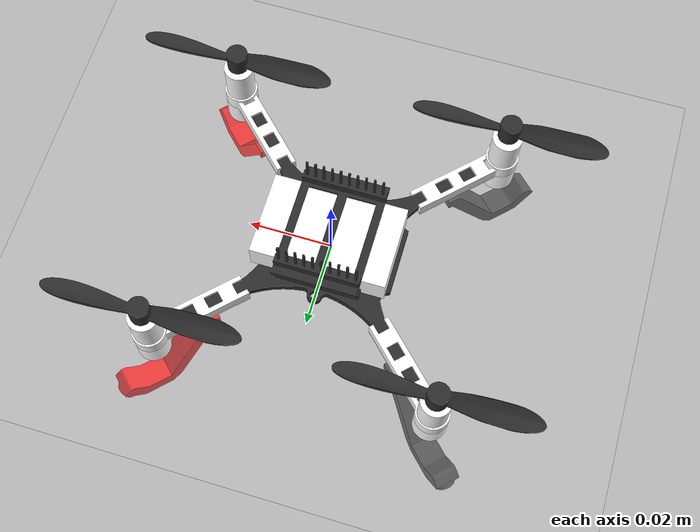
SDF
<?xml version="1.0" ?>
<sdf version="1.10">

<!--
    grep -r "name of searching" .
    ex) grep -r "def VelTraj" .
    For kill the gz server
pkill -f 'gz sim'
-->

<!--
    For gazebo service
ros2 service call /set_trigger sar_msgs/srv/SetTrigger "{data: 1}"

-->

    <world name="sar_world3">
        <physics name="1ms" type="ignored">
            <max_step_size>0.001</max_step_size>
            <real_time_factor>1.0</real_time_factor>
        </physics>

        <plugin
            filename="gz-sim-physics-system"
            name="gz::sim::systems::Physics">
        </plugin>

        <plugin
            filename="gz-sim-scene-broadcaster-system"
            name="gz::sim::systems::SceneBroadcaster">
        </plugin>

        <plugin
            filename="gz-sim-user-commands-system"
            name="gz::sim::systems::UserCommands">
        </plugin>

        <plugin
        filename="gz-sim-sensors-system"
        name="gz::sim::systems::Sensors">
        <render_engine>ogre2</render_engine>
        </plugin>

        <!-- Other world elements -->
        <gui fullscreen="0">
            <!-- 3D scene -->
            <plugin filename="GzScene3D" name="3D View">
                <gz-gui>
                <title>3D View</title>
                <property type="bool" key="showTitleBar">false</property>
                <property type="string" key="state">docked</property>
                </gz-gui>

                <engine>ogre2</engine>
                <scene>scene</scene>
                <ambient_light>0.4 0.4 0.4</ambient_light>
                <background_color>0.8 0.8 0.8</background_color>
            </plugin>

            <!-- World control -->
            <plugin filename="WorldControl" name="World control">
                <gz-gui>
                    <title>World control</title>
                    <property type="bool" key="showTitleBar">false</property>
                    <property type="bool" key="resizable">false</property>
                    <property type="double" key="height">72</property>
                    <property type="double" key="width">121</property>
                    <property type="double" key="z">1</property>

                    <property type="string" key="state">floating</property>
                    <anchors target="3D View">
                    <line own="left" target="left"/>
                    <line own="bottom" target="bottom"/>
                    </anchors>
                </gz-gui>

                <play_pause>true</play_pause>
                <step>true</step>
                <start_paused>true</start_paused>
                <service>/world/world_demo/control</service>
                <stats_topic>/world/world_demo/stats</stats_topic>
            </plugin>

            <!-- World statistics -->
            <plugin filename="WorldStats" name="World stats">
                <gz-gui>
                    <title>World stats</title>
                    <property type="bool" key="showTitleBar">false</property>
                    <property type="bool" key="resizable">false</property>
                    <property type="double" key="height">110</property>
                    <property type="double" key="width">290</property>
                    <property type="double" key="z">1</property>

                    <property type="string" key="state">floating</property>
                    <anchors target="3D View">
                    <line own="right" target="right"/>
                    <line own="bottom" target="bottom"/>
                    </anchors>
                </gz-gui>

                <sim_time>true</sim_time>
                <real_time>true</real_time>
                <real_time_factor>true</real_time_factor>
                <iterations>true</iterations>
                <topic>/world/world_demo/stats</topic>

            </plugin>

            <!-- Entity tree -->
            <plugin filename="EntityTree" name="Entity tree">
            </plugin>

        </gui>

        <light type="directional" name="sun">
            <cast_shadows>true</cast_shadows>
            <pose>0 0 10 0 0 0</pose>
            <diffuse>0.8 0.8 0.8 1</diffuse>
            <specular>0.2 0.2 0.2 1</specular>
            <attenuation>
                <range>1000</range>
                <constant>0.9</constant>
                <linear>0.01</linear>
                <quadratic>0.001</quadratic>
            </attenuation>
            <direction>-0.5 0.1 -0.9</direction>
        </light>
        <model name="ground_plane">
            <static>true</static>
            <link name="link">
                <pose>0 0 -0.3 0 0 0</pose>
                <collision name="collision">
                    <geometry>
                        <plane>
                            <normal>0 0 1</normal>
                            <size>4 4</size>
                        </plane>
                    </geometry>
                </collision>
                <visual name="visual">
                    <geometry>
                        <plane>
                            <normal>0 0 1</normal>
                            <size>4 4</size>
                        </plane>
                    </geometry>
                    <material>
                        <script>
                            <uri>models/Ground.material</uri>
                            <name>Ground_Mat</name>
                        </script>
                    </material>
                </visual>
                </link>
        </model>
        <model name='SAR_Base' canonical_link='SAR_Body'>
            <pose relative_to='world'>0 0 0 0 0 0</pose>   <!--the pose is relative to the world by default-->

            <!--SAR_Body-->
            <link name='SAR_Body'>
                <pose>0 0 0 0 0 0</pose>
                <inertial> <!--inertial properties of the link mass, inertia matix-->
                    <mass>37.0e-3</mass>
                    <inertia>
                        <ixx>17.20e-6</ixx>
                        <ixy>0</ixy>
                        <ixz>0</ixz>
                        <iyy>17.70e-6</iyy>
                        <iyz>0</iyz>
                        <izz>34.20e-6</izz>
                    </inertia>
                    <pose>0 0 0 0 0 0</pose>
                </inertial>
                <pose>0 0 0 0 0 0</pose>
                <gravity>1</gravity>
                <self_collide>0</self_collide>
                <kinematic>0</kinematic>
                <enable_wind>0</enable_wind>

                <sensor name="imu" type="imu">
                <always_on>1</always_on>
                <update_rate>100</update_rate>
                <visualize>true</visualize>
                <topic>imu</topic>
                <enable_metrics>true</enable_metrics>
                </sensor>

                <visual name='Crazyflie_Base_Assembly'>
                    <pose>0 0 0 0 0 0</pose>
                    <geometry>
                    <mesh>
                        <uri>models/Crazyflie/SAR_Base/meshes/Crazyflie_Base_Body.STL</uri>
                        <scale>1 1 1</scale>
                    </mesh>
                    </geometry>
                    <material>
                        <!--DarkGrey-->
                        <ambient>0.175 0.175 0.175 1</ambient>
                        <diffuse>0.175 0.175 0.175 1</diffuse>
                        <specular>0.175 0.175 0.175 1.00</specular>
                    <lighting>1</lighting>
                    </material>
                </visual>

                <visual name='Crazyflie_Motor_Arms'>
                    <pose>0 0 0 0 0 0</pose>
                    <geometry>
                    <mesh>
                        <uri>models/Crazyflie/SAR_Base/meshes/Crazyflie_Motor_Arms.STL</uri>
                        <scale>1 1 1</scale>
                    </mesh>
                    </geometry>
                    <material>
                        <!--White-->
                        <ambient>1 1 1 1</ambient>
                        <diffuse>1 1 1 1</diffuse>
                        <specular>0.1 0.1 0.1 0.128</specular>
                    <lighting>1</lighting>
                    </material>
                </visual>

                <collision name='Body_Collision_Prop_1'>
                    <pose>33.0e-3 -33.0e-3 9.25e-3 0 0 0</pose>
                    <geometry>
                    <cylinder>
                        <length>18.5e-3</length>
                        <radius>23.0e-3</radius>
                    </cylinder>
                    </geometry>
                </collision>

                <collision name='Body_Collision_Prop_2'>
                    <pose>-33.0e-3 -33.0e-3 9.25e-3 0 0 0</pose>
                    <geometry>
                    <cylinder>
                        <length>18.5e-3</length>
                        <radius>23.0e-3</radius>
                    </cylinder>
                    </geometry>
                </collision>

                <collision name='Body_Collision_Prop_3'>
                    <pose>-33.0e-3 33.0e-3 9.25e-3 0 0 0</pose>
                    <geometry>
                    <cylinder>
                        <length>18.5e-3</length>
                        <radius>23.0e-3</radius>
                    </cylinder>
                    </geometry>
                </collision>

                <collision name='Body_Collision_Prop_4'>
                    <pose>33.0e-3 33.0e-3 9.25e-3 0 0 0</pose>
                    <geometry>
                    <cylinder>
                        <length>18.5e-3</length>
                        <radius>23.0e-3</radius>
                    </cylinder>
                    </geometry>
                </collision>

            </link>

            <link name='Prop_1'>
                <inertial>
                    <mass>1e-6</mass>
                    <inertia>
                        <ixx>1e-6</ixx>
                        <ixy>0</ixy>
                        <ixz>0</ixz>
                        <iyy>1e-6</iyy>
                        <iyz>0</iyz>
                        <izz>1e-6</izz>
                    </inertia>
                    <pose>0 0 0 0 0 0</pose>
                </inertial>
                <pose>33.0e-3 -33.0e-3 16.0e-3 0 0 0</pose>
                <gravity>1</gravity>
                <self_collide>0</self_collide>
                <visual name='Crazyflie_Propeller_1'>
                    <pose>0 0 0 0 0 0</pose>
                    <geometry>
                        <mesh>
                            <uri>models/Crazyflie/SAR_Base/meshes/Crazyflie_Propeller.STL</uri>
                            <scale>1 1 1</scale>
                        </mesh>
                    </geometry>
                    <material>
                        <!--DarkGrey-->
                        <ambient>0.175 0.175 0.175 1</ambient>
                        <diffuse>0.175 0.175 0.175 1</diffuse>
                        <specular>0.175 0.175 0.175 1.00</specular>
                    <lighting>1</lighting>
                    </material>
                </visual>
            </link>

            <link name='Prop_2'>
                <inertial>
                    <mass>1e-6</mass>
                    <inertia>
                        <ixx>1e-6</ixx>
                        <ixy>0</ixy>
                        <ixz>0</ixz>
                        <iyy>1e-6</iyy>
                        <iyz>0</iyz>
                        <izz>1e-6</izz>
                    </inertia>
                    <pose>0 0 0 0 0 0</pose>
                </inertial>
                <pose>-33.0e-3 -33.0e-3 16.0e-3 0 0 0</pose>
                <gravity>1</gravity>
                <self_collide>0</self_collide>
                <visual name='Crazyflie_Propeller_2'>
                    <pose>0 0 0 0 0 0</pose>
                    <geometry>
                        <mesh>
                            <uri>models/Crazyflie/SAR_Base/meshes/Crazyflie_Propeller.STL</uri>
                            <scale>1 1 1</scale>
                        </mesh>
                    </geometry>
                    <material>
                        <!--DarkGrey-->
                        <ambient>0.175 0.175 0.175 1</ambient>
                        <diffuse>0.175 0.175 0.175 1</diffuse>
                        <specular>0.175 0.175 0.175 1.00</specular>
                    <lighting>1</lighting>
                    </material>
                </visual>
            </link>

            <link name='Prop_3'>
            <inertial>
                <mass>1e-6</mass>
                <inertia>
                    <ixx>1e-6</ixx>
                    <ixy>0</ixy>
                    <ixz>0</ixz>
                    <iyy>1e-6</iyy>
                    <iyz>0</iyz>
                    <izz>1e-6</izz>
                </inertia>
                <pose>0 0 0 0 0 0</pose>
            </inertial>
            <pose>-33.0e-3 33.0e-3 16.0e-3 0 0 0</pose>
            <gravity>1</gravity>
            <self_collide>0</self_collide>
                <visual name='Crazyflie_Propeller_3'>
                    <pose>0 0 0 0 0 0</pose>
                    <geometry>
                    <mesh>
                        <uri>models/Crazyflie/SAR_Base/meshes/Crazyflie_Propeller.STL</uri>
                        <scale>1 1 1</scale>
                    </mesh>
                    </geometry>
                        <material>
                            <!--DarkGrey-->
                            <ambient>0.175 0.175 0.175 1</ambient>
                            <diffuse>0.175 0.175 0.175 1</diffuse>
                            <specular>0.175 0.175 0.175 1.00</specular>
                        <lighting>1</lighting>
                        </material>
                </visual>
            </link>

            <link name='Prop_4'>
            <inertial>
                <mass>1e-6</mass>
                <inertia>
                    <ixx>1e-6</ixx>
                    <ixy>0</ixy>
                    <ixz>0</ixz>
                    <iyy>1e-6</iyy>
                    <iyz>0</iyz>
                    <izz>1e-6</izz>
                </inertia>
                <pose>0 0 0 0 0 0</pose>
            </inertial>
            <pose>33.0e-3 33.0e-3 16.0e-3 0 0 0</pose>
            <gravity>1</gravity>
            <self_collide>0</self_collide>
                <visual name='Crazyflie_Propeller_4'>
                    <pose>0 0 0 0 0 0</pose>
                    <geometry>
                        <mesh>
                            <uri>models/Crazyflie/SAR_Base/meshes/Crazyflie_Propeller.STL</uri>
                            <scale>1 1 1</scale>
                        </mesh>
                    </geometry>
                        <material>
                            <!--DarkGrey-->
                            <ambient>0.175 0.175 0.175 1</ambient>
                            <diffuse>0.175 0.175 0.175 1</diffuse>
                            <specular>0.175 0.175 0.175 1.00</specular>
                        <lighting>1</lighting>
                        </material>
                </visual>
            </link>

            <joint name='Prop_1_Joint' type='revolute'>
                <pose relative_to='Prop_1'/>
                <parent>SAR_Body</parent>
                <child>Prop_1</child>
                <axis>
                    <xyz expressed_in='__model__'>0 0 1</xyz>
                    <limit>
                        <lower>-1.79769e+308</lower> <!--negative infinity-->
                        <upper>1.79769e+308</upper> <!--positive infinity-->
                        <effort>-1</effort>
                        <velocity>-1</velocity>
                    </limit>
                    <dynamics>
                        <spring_reference>0</spring_reference>
                        <spring_stiffness>0</spring_stiffness>
                    </dynamics>
                </axis>
            </joint>

            <joint name='Prop_2_Joint' type='revolute'>
                <pose relative_to='Prop_2'/>
                <parent>SAR_Body</parent>
                <child>Prop_2</child>
                <axis>
                    <xyz expressed_in='__model__'>0 0 1</xyz>
                    <limit>
                        <lower>-1.79769e+308</lower>
                        <upper>1.79769e+308</upper>
                        <effort>-1</effort>
                        <velocity>-1</velocity>
                    </limit>
                    <dynamics>
                        <spring_reference>0</spring_reference>
                        <spring_stiffness>0</spring_stiffness>
                    </dynamics>
                </axis>
            </joint>

            <joint name='Prop_3_Joint' type='revolute'>
                <pose relative_to='Prop_3'/>
                <parent>SAR_Body</parent>
                <child>Prop_3</child>
                <axis>
                    <xyz expressed_in='__model__'>0 0 1</xyz>
                    <limit>
                        <lower>-1.79769e+308</lower>
                        <upper>1.79769e+308</upper>
                        <effort>-1</effort>
                        <velocity>-1</velocity>
                    </limit>
                    <dynamics>
                        <spring_reference>0</spring_reference>
                        <spring_stiffness>0</spring_stiffness>
                    </dynamics>
                </axis>
            </joint>

            <joint name='Prop_4_Joint' type='revolute'>
                <pose relative_to='Prop_4'/>
                <parent>SAR_Body</parent>t
                <child>Prop_4</child>
                <axis>
                    <xyz expressed_in='__model__'>0 0 1</xyz>
                    <limit>
                        <lower>-1.79769e+308</lower>
                        <upper>1.79769e+308</upper>
                        <effort>-1</effort>
                        <velocity>-1</velocity>
                    </limit>
                    <dynamics>
                        <spring_reference>0</spring_reference>
                        <spring_stiffness>0</spring_stiffness>
                    </dynamics>
                </axis>
            </joint>
<!--30deg 25mm-->
            <link name='Leg_1'>
            <pose relative_to='SAR_Body'>23.8e-3 -23.8e-3 -1.6e-3 0 1.0472 -0.785</pose>
            <inertial>
                <mass>2.40E-3</mass>
                <pose>2.32E-2 0 2.32E-3 0 0 0 </pose>
                <inertia>
                <ixx>5.29E-8</ixx>
                <ixy>0</ixy>
                <ixz>8.39E-8</ixz>
                <iyy>3.47E-7</iyy>
                <iyz>0</iyz>
                <izz>3.06E-7</izz>
                </inertia>
            </inertial>
            <gravity>1</gravity>
            <self_collide>1</self_collide>
            <visual name='Leg_Visual'>
                <pose>0 0 0 0 0 0</pose>
                <geometry>
                <mesh>
                    <uri>models/Crazyflie/Leg_Assemblies/meshes/Leg_Assembly_30_deg--25mm--Crazyflie.STL</uri>
                    <scale>1 1 1</scale>
                </mesh>
                </geometry>
                    <material>
                        <!--Red-->
                        <ambient>1.0 0.0 0.0 1</ambient>
                        <diffuse>1.0 0.0 0.0 1</diffuse>
                        <specular>0.1 0.1 0.1 1.0</specular>
                    <lighting>1</lighting>
                    </material>
            </visual>
            <collision name="Leg_Collision_1">
                <pose>26.9e-3 0 5.3e-3 0 0 0</pose>
                <geometry>
                <sphere>
                    <radius>6.5e-3</radius>
                </sphere>
                </geometry>
            </collision>
            </link>

            <link name='Leg_2'>
            <pose relative_to='SAR_Body'>-23.8e-3 -23.8e-3 -1.6e-3 0 1.0472 -2.35</pose>
            <inertial>
                <mass>2.40E-3</mass>
                <pose>2.32E-2 0 2.32E-3 0 0 0 </pose>
                <inertia>
                <ixx>5.29E-8</ixx>
                <ixy>0</ixy>
                <ixz>8.39E-8</ixz>
                <iyy>3.47E-7</iyy>
                <iyz>0</iyz>
                <izz>3.06E-7</izz>
                </inertia>
            </inertial>
            <gravity>1</gravity>
            <self_collide>1</self_collide>
            <visual name='Leg_Visual'>
                <pose>0 0 0 0 0 0</pose>
                <geometry>
                <mesh>
                    <uri>models/Crazyflie/Leg_Assemblies/meshes/Leg_Assembly_30_deg--25mm--Crazyflie.STL</uri>
                    <scale>1 1 1</scale>
                </mesh>
                </geometry>
                    <material>
                        <!--DarkGrey-->
                        <ambient>0.175 0.175 0.175 1</ambient>
                        <diffuse>0.175 0.175 0.175 1</diffuse>
                        <specular>0.175 0.175 0.175 1.00</specular>
                    <lighting>1</lighting>
                    </material>
            </visual>
            <collision name="Leg_Collision_2">
                <pose>26.9e-3 0 5.3e-3 0 0 0</pose>
                <geometry>
                <sphere>
                    <radius>6.5e-3</radius>
                </sphere>
                </geometry>
            </collision>
            </link>

            <link name='Leg_3'>
            <pose relative_to='SAR_Body'>-23.8e-3 23.8e-3 -1.6e-3 0 1.0472 2.35</pose>
            <inertial>
                <mass>2.40E-3</mass>
                <pose>2.32E-2 0 2.32E-3 0 0 0 </pose>
                <inertia>
                <ixx>5.29E-8</ixx>
                <ixy>0</ixy>
                <ixz>8.39E-8</ixz>
                <iyy>3.47E-7</iyy>
                <iyz>0</iyz>
                <izz>3.06E-7</izz>
                </inertia>
            </inertial>
            <gravity>1</gravity>
            <self_collide>1</self_collide>
            <visual name='Leg_Visual'>
                <pose>0 0 0 0 0 0</pose>
                <geometry>
                <mesh>
                    <uri>models/Crazyflie/Leg_Assemblies/meshes/Leg_Assembly_30_deg--25mm--Crazyflie.STL</uri>
                    <scale>1 1 1</scale>
                </mesh>
                </geometry>
                    <material>
                        <!--DarkGrey-->
                        <ambient>0.175 0.175 0.175 1</ambient>
                        <diffuse>0.175 0.175 0.175 1</diffuse>
                        <specular>0.175 0.175 0.175 1.00</specular>
                    <lighting>1</lighting>
                    </material>
            </visual>
            <collision name="Leg_Collision_3">
                <pose>26.9e-3 0 5.3e-3 0 0 0</pose>
                <geometry>
                <sphere>
                    <radius>6.5e-3</radius>
                </sphere>
                </geometry>
            </collision>
            </link>

            <link name='Leg_4'>
            <pose relative_to='SAR_Body'>23.8e-3 23.8e-3 -1.6e-3 0 1.0472 0.785</pose>
            <inertial>
                <mass>2.40E-3</mass>
                <pose>2.32E-2 0 2.32E-3 0 0 0 </pose>
                <inertia>
                <ixx>5.29E-8</ixx>
                <ixy>0</ixy>
                <ixz>8.39E-8</ixz>
                <iyy>3.47E-7</iyy>
                <iyz>0</iyz>
                <izz>3.06E-7</izz>
                </inertia>
            </inertial>
            <gravity>1</gravity>
            <self_collide>1</self_collide>
            <visual name='Leg_Visual'>
                <pose>0 0 0 0 0 0</pose>
                <geometry>
                <mesh>
                    <uri>models/Crazyflie/Leg_Assemblies/meshes/Leg_Assembly_30_deg--25mm--Crazyflie.STL</uri>
                    <scale>1 1 1</scale>
                </mesh>
                </geometry>
                    <material>
                        <!--Red-->
                        <ambient>1.0 0.0 0.0 1</ambient>
                        <diffuse>1.0 0.0 0.0 1</diffuse>
                        <specular>0.1 0.1 0.1 1.0</specular>
                    <lighting>1</lighting>
                    </material>
            </visual>
            <collision name="Leg_Collision_4">
                <pose>26.9e-3 0 5.3e-3 0 0 0</pose>
                <geometry>
                <sphere>
                    <radius>6.5e-3</radius>
                </sphere>
                </geometry>
            </collision>
            </link>

<!--In Byran's program spring_stiffness,damping are zero-->
            <joint name='Hinge_1_Joint' type='universal'>
            <parent>SAR_Body</parent>
            <child>Leg_1</child>
            <pose>0 0 0 0 0.5236 0</pose>
            <axis>
                <xyz>0 1 0</xyz>
                <limit>
                <lower>-5</lower>
                <upper>5</upper>
                </limit>
                <dynamics>
                <spring_stiffness>800e-6</spring_stiffness>
                <damping>5e-6</damping>
                </dynamics>
            </axis>
            <axis2>
                <xyz>0 0 1</xyz>
                <limit>
                <lower>-5</lower>
                <upper>5</upper>
                </limit>
                <dynamics>
                <spring_stiffness>800e-6</spring_stiffness>
                <damping>5e-6</damping>
                </dynamics>
            </axis2>
            </joint>

            <joint name='Hinge_2_Joint' type='universal'>
            <parent>SAR_Body</parent>
            <child>Leg_2</child>
            <pose>0 0 0 0 0.5236 0</pose>
            <axis>
                <xyz>0 1 0</xyz>
                <limit>
                <lower>-5</lower>
                <upper>5</upper>
                </limit>
                <dynamics>
                <spring_stiffness>800e-6</spring_stiffness>
                <damping>5e-6</damping>
                </dynamics>
            </axis>
            <axis2>
                <xyz>0 0 1</xyz>
                <limit>
                <lower>-5</lower>
                <upper>5</upper>
                </limit>
                <dynamics>
                <spring_stiffness>800e-6</spring_stiffness>
                <damping>5e-6</damping>
                </dynamics>
            </axis2>
            </joint>

            <joint name='Hinge_3_Joint' type='universal'>
            <parent>SAR_Body</parent>
            <child>Leg_3</child>
            <pose>0 0 0 0 0.5236 0</pose>
            <axis>
                <xyz>0 1 0</xyz>
                <limit>
                <lower>-5</lower>
                <upper>5</upper>
                </limit>
                <dynamics>
                <spring_stiffness>800e-6</spring_stiffness>
                <damping>5e-6</damping>
                </dynamics>
            </axis>
            <axis2>
                <xyz>0 0 1</xyz>
                <limit>
                <lower>-5</lower>
                <upper>5</upper>
                </limit>
                <dynamics>
                <spring_stiffness>800e-6</spring_stiffness>
                <damping>5e-6</damping>
                </dynamics>
            </axis2>
            </joint>

            <joint name='Hinge_4_Joint' type='universal'>
            <parent>SAR_Body</parent>
            <child>Leg_4</child>
            <pose>0 0 0 0 0.5236 0</pose>
            <axis>
                <xyz>0 1 0</xyz>
                <limit>
                <lower>-5</lower>
                <upper>5</upper>
                </limit>
                <dynamics>
                <spring_stiffness>800e-6</spring_stiffness>
                <damping>5e-6</damping>
                </dynamics>
            </axis>
            <axis2>
                <xyz>0 0 1</xyz>
                <limit>
                <lower>-5</lower>
                <upper>5</upper>
                </limit>
                <dynamics>
                <spring_stiffness>800e-6</spring_stiffness>
                <damping>5e-6</damping>
                </dynamics>
            </axis2>
            </joint>

            <plugin
                filename="/home/dlee/ros2_ws/install/sar_gazebo/lib/libImu_Plugin.so"
                name="gz::sim::systems::Imu_Plugin">
            </plugin>

            <plugin
                filename="/home/dlee/ros2_ws/install/sar_gazebo/lib/libVicon_Plugin.so"
                name="gz::sim::systems::Vicon_Plugin">
                <link_name>Prop_1</link_name>
            </plugin>
        </model>
    </world>
</sdf>
